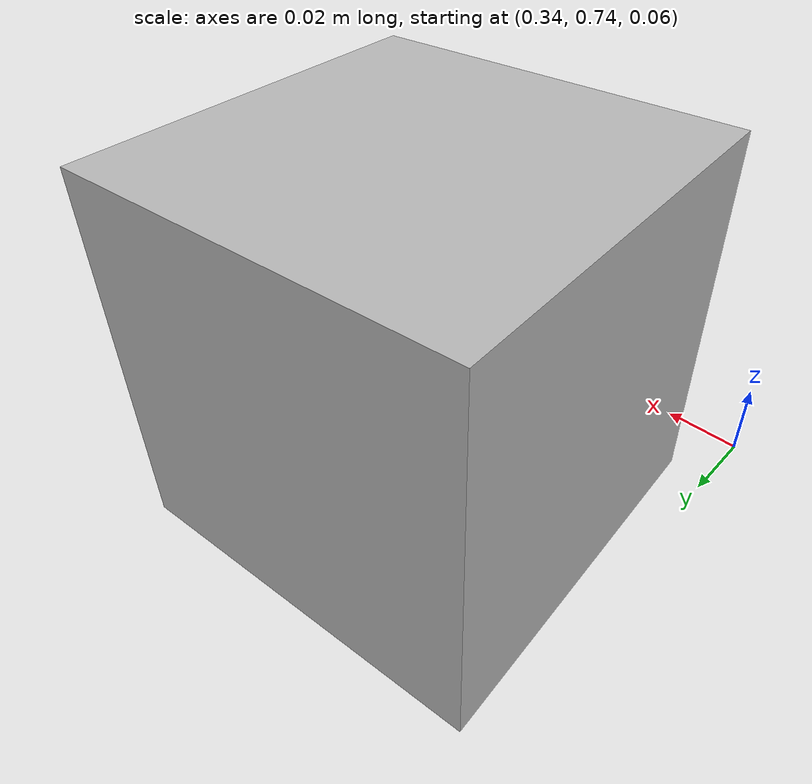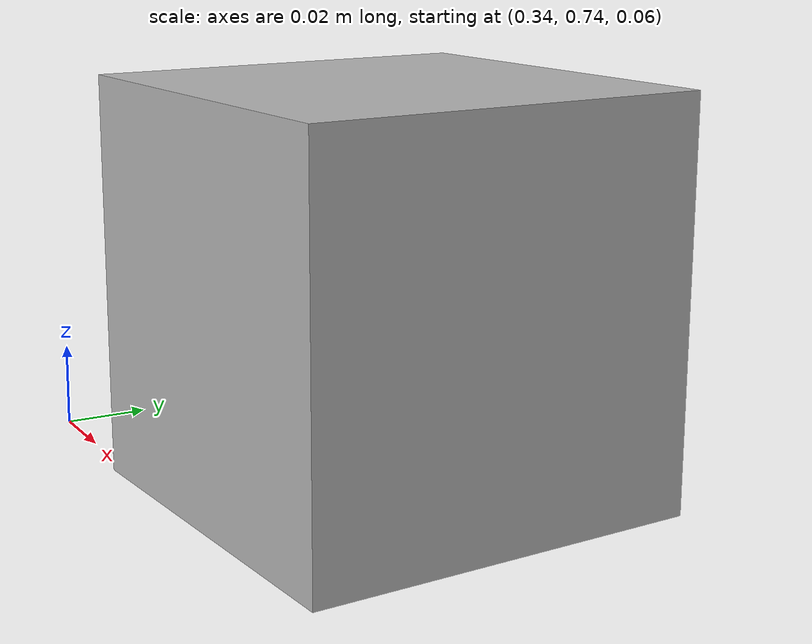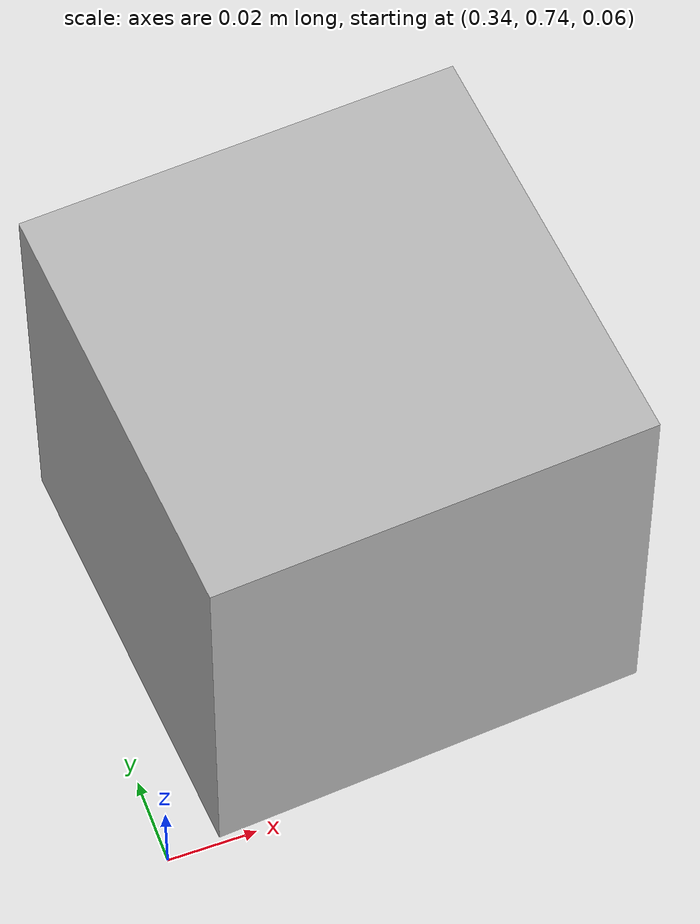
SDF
<?xml version="1.0"?>
<sdf version="1.9">
  <model name="sideview_camera">
    <static>true</static>
    <pose>0.4 0.8 0.1 0 0 -1.5</pose>
    <link name="camera_link">
      <sensor name="sideview_camera" type="camera">
        <always_on>true</always_on>
        <update_rate>30</update_rate>
        <visualize>true</visualize>
        <topic>sideview_camera/image_raw</topic>
        <camera name="sideview_camera">
        <camera_info_topic>sideview_camera/camera_info</camera_info_topic>
          <horizontal_fov>1.5708</horizontal_fov>
          <image>
            <width>1280</width>
            <height>720</height>
            <format>R8G8B8</format>
          </image>
          <clip>
            <near>0.1</near>
            <far>100</far>
          </clip>
        </camera>
      </sensor>
      <visual name="visual">
        <geometry>
          <box>
            <size>0.1 0.1 0.1</size>
          </box>
        </geometry>
      </visual>
    </link>
  </model>
</sdf>
